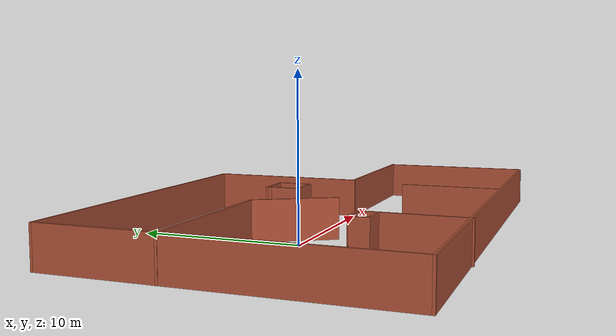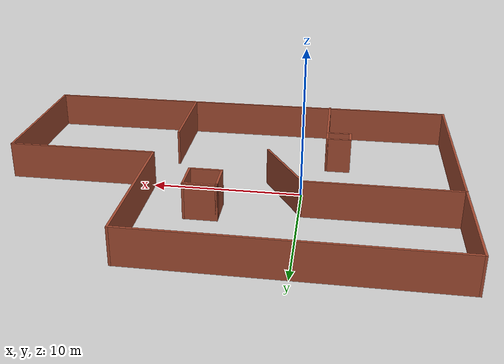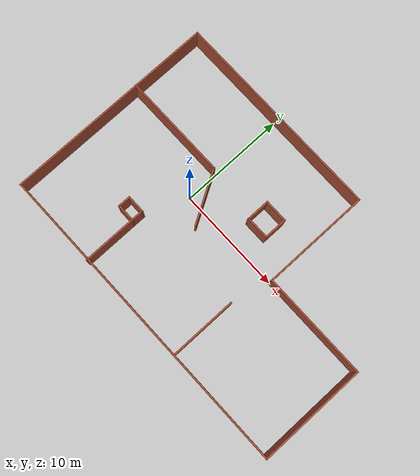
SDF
<?xml version='1.0'?>
<sdf version='1.7'>
  <model name='flocking2'>
    <pose>4.99225 -0.055825 0 0 -0 0</pose>
    <link name='Wall_0'>
      <collision name='Wall_0_Collision'>
        <geometry>
          <box>
            <size>30.15 0.15 2.5</size>
          </box>
        </geometry>
        <pose>0 0 1.25 0 -0 0</pose>
      </collision>
      <visual name='Wall_0_Visual'>
        <pose>0 0 1.25 0 -0 0</pose>
        <geometry>
          <box>
            <size>30.15 0.15 2.5</size>
          </box>
        </geometry>
        <material>
          <script>
            <uri>file://media/materials/scripts/gazebo.material</uri>
            <name>Gazebo/Bricks</name>
          </script>
          <ambient>1 1 1 1</ambient>
        </material>
        <meta>
          <layer>0</layer>
        </meta>
      </visual>
      <pose>0.007751 -9.94417 0 0 -0 0</pose>
    </link>
    <link name='Wall_11'>
      <collision name='Wall_11_Collision'>
        <geometry>
          <box>
            <size>6.25 0.15 2.5</size>
          </box>
        </geometry>
        <pose>0 0 1.25 0 -0 0</pose>
      </collision>
      <visual name='Wall_11_Visual'>
        <pose>0 0 1.25 0 -0 0</pose>
        <geometry>
          <box>
            <size>6.25 0.15 2.5</size>
          </box>
        </geometry>
        <material>
          <script>
            <uri>file://media/materials/scripts/gazebo.material</uri>
            <name>Gazebo/Bricks</name>
          </script>
          <ambient>1 1 1 1</ambient>
        </material>
        <meta>
          <layer>0</layer>
        </meta>
      </visual>
      <pose>-6.46384 -7.00582 0 0 -0 1.5708</pose>
    </link>
    <link name='Wall_12'>
      <collision name='Wall_12_Collision'>
        <geometry>
          <box>
            <size>1.75 0.15 2.5</size>
          </box>
        </geometry>
        <pose>0 0 1.25 0 -0 0</pose>
      </collision>
      <visual name='Wall_12_Visual'>
        <pose>0 0 1.25 0 -0 0</pose>
        <geometry>
          <box>
            <size>1.75 0.15 2.5</size>
          </box>
        </geometry>
        <material>
          <script>
            <uri>file://media/materials/scripts/gazebo.material</uri>
            <name>Gazebo/Bricks</name>
          </script>
          <ambient>1 1 1 1</ambient>
        </material>
        <meta>
          <layer>0</layer>
        </meta>
      </visual>
      <pose>-7.26384 -3.95582 0 0 -0 3.14159</pose>
    </link>
    <link name='Wall_15'>
      <collision name='Wall_15_Collision'>
        <geometry>
          <box>
            <size>1.25 0.15 2.5</size>
          </box>
        </geometry>
        <pose>0 0 1.25 0 -0 0</pose>
      </collision>
      <visual name='Wall_15_Visual'>
        <pose>0 0 1.25 0 -0 0</pose>
        <geometry>
          <box>
            <size>1.25 0.15 2.5</size>
          </box>
        </geometry>
        <material>
          <script>
            <uri>file://media/materials/scripts/gazebo.material</uri>
            <name>Gazebo/Bricks</name>
          </script>
          <ambient>1 1 1 1</ambient>
        </material>
        <meta>
          <layer>0</layer>
        </meta>
      </visual>
      <pose>-8.06384 -4.50582 0 0 -0 -1.5708</pose>
    </link>
    <link name='Wall_16'>
      <collision name='Wall_16_Collision'>
        <geometry>
          <box>
            <size>1.75 0.15 2.5</size>
          </box>
        </geometry>
        <pose>0 0 1.25 0 -0 0</pose>
      </collision>
      <visual name='Wall_16_Visual'>
        <pose>0 0 1.25 0 -0 0</pose>
        <geometry>
          <box>
            <size>1.75 0.15 2.5</size>
          </box>
        </geometry>
        <material>
          <script>
            <uri>file://media/materials/scripts/gazebo.material</uri>
            <name>Gazebo/Bricks</name>
          </script>
          <ambient>1 1 1 1</ambient>
        </material>
        <meta>
          <layer>0</layer>
        </meta>
      </visual>
      <pose>-7.26384 -5.05582 0 0 -0 0</pose>
    </link>
    <link name='Wall_19'>
      <collision name='Wall_19_Collision'>
        <geometry>
          <box>
            <size>6.25 0.15 2.5</size>
          </box>
        </geometry>
        <pose>0 0 1.25 0 -0 0</pose>
      </collision>
      <visual name='Wall_19_Visual'>
        <pose>0 0 1.25 0 -0 0</pose>
        <geometry>
          <box>
            <size>6.25 0.15 2.5</size>
          </box>
        </geometry>
        <material>
          <script>
            <uri>file://media/materials/scripts/gazebo.material</uri>
            <name>Gazebo/Bricks</name>
          </script>
          <ambient>1 1 1 1</ambient>
        </material>
        <meta>
          <layer>0</layer>
        </meta>
      </visual>
      <pose>4.09704 -6.74054 0 0 -0 -1.5708</pose>
    </link>
    <link name='Wall_2'>
      <collision name='Wall_2_Collision'>
        <geometry>
          <box>
            <size>20.15 0.15 2.5</size>
          </box>
        </geometry>
        <pose>0 0 1.25 0 -0 0</pose>
      </collision>
      <visual name='Wall_2_Visual'>
        <pose>0 0 1.25 0 -0 0</pose>
        <geometry>
          <box>
            <size>20.15 0.15 2.5</size>
          </box>
        </geometry>
        <material>
          <script>
            <uri>file://media/materials/scripts/gazebo.material</uri>
            <name>Gazebo/Bricks</name>
          </script>
          <ambient>1 1 1 1</ambient>
        </material>
        <meta>
          <layer>0</layer>
        </meta>
      </visual>
      <pose>-14.9922 0.055825 0 0 -0 1.5708</pose>
    </link>
    <link name='Wall_21'>
      <collision name='Wall_21_Collision'>
        <geometry>
          <box>
            <size>2 0.15 2.5</size>
          </box>
        </geometry>
        <pose>0 0 1.25 0 -0 0</pose>
      </collision>
      <visual name='Wall_21_Visual'>
        <pose>0 0 1.25 0 -0 0</pose>
        <geometry>
          <box>
            <size>2 0.15 2.5</size>
          </box>
        </geometry>
        <material>
          <script>
            <uri>file://media/materials/scripts/gazebo.material</uri>
            <name>Gazebo/Bricks</name>
          </script>
          <ambient>1 1 1 1</ambient>
        </material>
        <meta>
          <layer>0</layer>
        </meta>
      </visual>
      <pose>-0.022655 3.08882 0 0 -0 -1.5708</pose>
    </link>
    <link name='Wall_22'>
      <collision name='Wall_22_Collision'>
        <geometry>
          <box>
            <size>2.25 0.15 2.5</size>
          </box>
        </geometry>
        <pose>0 0 1.25 0 -0 0</pose>
      </collision>
      <visual name='Wall_22_Visual'>
        <pose>0 0 1.25 0 -0 0</pose>
        <geometry>
          <box>
            <size>2.25 0.15 2.5</size>
          </box>
        </geometry>
        <material>
          <script>
            <uri>file://media/materials/scripts/gazebo.material</uri>
            <name>Gazebo/Bricks</name>
          </script>
          <ambient>1 1 1 1</ambient>
        </material>
        <meta>
          <layer>0</layer>
        </meta>
      </visual>
      <pose>1.02734 2.16382 0 0 -0 0</pose>
    </link>
    <link name='Wall_23'>
      <collision name='Wall_23_Collision'>
        <geometry>
          <box>
            <size>2.25 0.15 2.5</size>
          </box>
        </geometry>
        <pose>0 0 1.25 0 -0 0</pose>
      </collision>
      <visual name='Wall_23_Visual'>
        <pose>0 0 1.25 0 -0 0</pose>
        <geometry>
          <box>
            <size>2.25 0.15 2.5</size>
          </box>
        </geometry>
        <material>
          <script>
            <uri>file://media/materials/scripts/gazebo.material</uri>
            <name>Gazebo/Bricks</name>
          </script>
          <ambient>1 1 1 1</ambient>
        </material>
        <meta>
          <layer>0</layer>
        </meta>
      </visual>
      <pose>2.07735 3.21382 0 0 -0 1.5708</pose>
    </link>
    <link name='Wall_24'>
      <collision name='Wall_24_Collision'>
        <geometry>
          <box>
            <size>2.25 0.15 2.5</size>
          </box>
        </geometry>
        <pose>0 0 1.25 0 -0 0</pose>
      </collision>
      <visual name='Wall_24_Visual'>
        <pose>0 0 1.25 0 -0 0</pose>
        <geometry>
          <box>
            <size>2.25 0.15 2.5</size>
          </box>
        </geometry>
        <material>
          <script>
            <uri>file://media/materials/scripts/gazebo.material</uri>
            <name>Gazebo/Bricks</name>
          </script>
          <ambient>1 1 1 1</ambient>
        </material>
        <meta>
          <layer>0</layer>
        </meta>
      </visual>
      <pose>1.02734 4.26382 0 0 -0 3.14159</pose>
    </link>
    <link name='Wall_26'>
      <collision name='Wall_26_Collision'>
        <geometry>
          <box>
            <size>0.4 0.15 2.5</size>
          </box>
        </geometry>
        <pose>0 0 1.25 0 -0 0</pose>
      </collision>
      <visual name='Wall_26_Visual'>
        <pose>0 0 1.25 0 -0 0</pose>
        <geometry>
          <box>
            <size>0.4 0.15 2.5</size>
          </box>
        </geometry>
        <material>
          <script>
            <uri>file://media/materials/scripts/gazebo.material</uri>
            <name>Gazebo/Bricks</name>
          </script>
          <ambient>1 1 1 1</ambient>
        </material>
        <meta>
          <layer>0</layer>
        </meta>
      </visual>
      <pose>-0.022655 4.13882 0 0 -0 1.5708</pose>
    </link>
    <link name='Wall_3'>
      <collision name='Wall_3_Collision'>
        <geometry>
          <box>
            <size>20.15 0.15 2.5</size>
          </box>
        </geometry>
        <pose>0 0 1.25 0 -0 0</pose>
      </collision>
      <visual name='Wall_3_Visual'>
        <pose>0 0 1.25 0 -0 0</pose>
        <geometry>
          <box>
            <size>20.15 0.15 2.5</size>
          </box>
        </geometry>
        <material>
          <script>
            <uri>file://media/materials/scripts/gazebo.material</uri>
            <name>Gazebo/Bricks</name>
          </script>
          <ambient>1 1 1 1</ambient>
        </material>
        <meta>
          <layer>0</layer>
        </meta>
      </visual>
      <pose>-4.99225 10.0558 0 0 -0 0</pose>
    </link>
    <link name='Wall_4'>
      <collision name='Wall_4_Collision'>
        <geometry>
          <box>
            <size>10.15 0.15 2.5</size>
          </box>
        </geometry>
        <pose>0 0 1.25 0 -0 0</pose>
      </collision>
      <visual name='Wall_4_Visual'>
        <pose>0 0 1.25 0 -0 0</pose>
        <geometry>
          <box>
            <size>10.15 0.15 2.5</size>
          </box>
        </geometry>
        <material>
          <script>
            <uri>file://media/materials/scripts/gazebo.material</uri>
            <name>Gazebo/Bricks</name>
          </script>
          <ambient>1 1 1 1</ambient>
        </material>
        <meta>
          <layer>0</layer>
        </meta>
      </visual>
      <pose>5.00775 5.05582 0 0 -0 -1.5708</pose>
    </link>
    <link name='Wall_5'>
      <collision name='Wall_5_Collision'>
        <geometry>
          <box>
            <size>10.15 0.15 2.5</size>
          </box>
        </geometry>
        <pose>0 0 1.25 0 -0 0</pose>
      </collision>
      <visual name='Wall_5_Visual'>
        <pose>0 0 1.25 0 -0 0</pose>
        <geometry>
          <box>
            <size>10.15 0.15 2.5</size>
          </box>
        </geometry>
        <material>
          <script>
            <uri>file://media/materials/scripts/gazebo.material</uri>
            <name>Gazebo/Bricks</name>
          </script>
          <ambient>1 1 1 1</ambient>
        </material>
        <meta>
          <layer>0</layer>
        </meta>
      </visual>
      <pose>10.0078 0.055825 0 0 -0 0</pose>
    </link>
    <link name='Wall_6'>
      <collision name='Wall_6_Collision'>
        <geometry>
          <box>
            <size>10.15 0.15 2.5</size>
          </box>
        </geometry>
        <pose>0 0 1.25 0 -0 0</pose>
      </collision>
      <visual name='Wall_6_Visual'>
        <pose>0 0 1.25 0 -0 0</pose>
        <geometry>
          <box>
            <size>10.15 0.15 2.5</size>
          </box>
        </geometry>
        <material>
          <script>
            <uri>file://media/materials/scripts/gazebo.material</uri>
            <name>Gazebo/Bricks</name>
          </script>
          <ambient>1 1 1 1</ambient>
        </material>
        <meta>
          <layer>0</layer>
        </meta>
      </visual>
      <pose>15.0078 -4.94418 0 0 -0 -1.5708</pose>
    </link>
    <link name='Wall_8'>
      <collision name='Wall_8_Collision'>
        <geometry>
          <box>
            <size>10 0.15 2.5</size>
          </box>
        </geometry>
        <pose>0 0 1.25 0 -0 0</pose>
      </collision>
      <visual name='Wall_8_Visual'>
        <pose>0 0 1.25 0 -0 0</pose>
        <geometry>
          <box>
            <size>10 0.15 2.5</size>
          </box>
        </geometry>
        <material>
          <script>
            <uri>file://media/materials/scripts/gazebo.material</uri>
            <name>Gazebo/Bricks</name>
          </script>
          <ambient>1 1 1 1</ambient>
        </material>
        <meta>
          <layer>0</layer>
        </meta>
      </visual>
      <pose>-10.0828 2.96347 0 0 -0 0</pose>
    </link>
    <link name='Wall_9'>
      <collision name='Wall_9_Collision'>
        <geometry>
          <box>
            <size>5.25 0.15 2.5</size>
          </box>
        </geometry>
        <pose>0 0 1.25 0 -0 0</pose>
      </collision>
      <visual name='Wall_9_Visual'>
        <pose>0 0 1.25 0 -0 0</pose>
        <geometry>
          <box>
            <size>5.25 0.15 2.5</size>
          </box>
        </geometry>
        <material>
          <script>
            <uri>file://media/materials/scripts/gazebo.material</uri>
            <name>Gazebo/Bricks</name>
          </script>
          <ambient>1 1 1 1</ambient>
        </material>
        <meta>
          <layer>0</layer>
        </meta>
      </visual>
      <pose>-3.88275 0.755109 0 0 -0 -1.0472</pose>
    </link>
    <static>1</static>
  </model>
</sdf>
